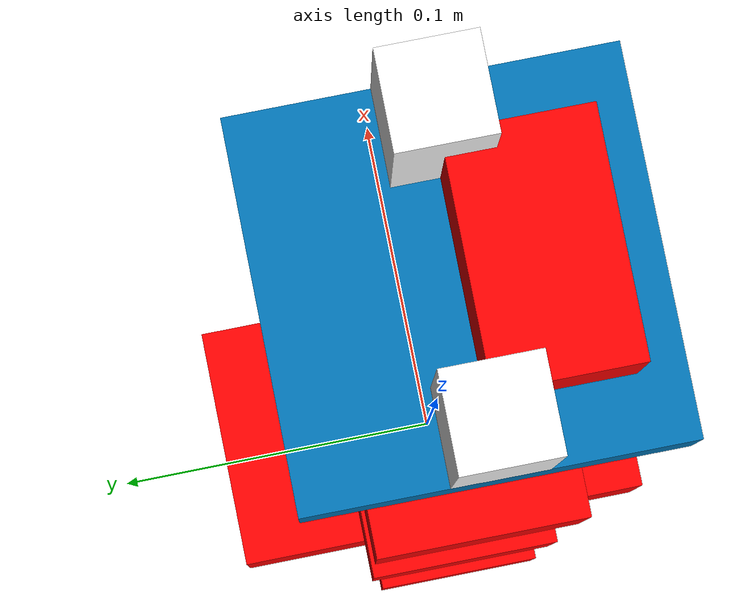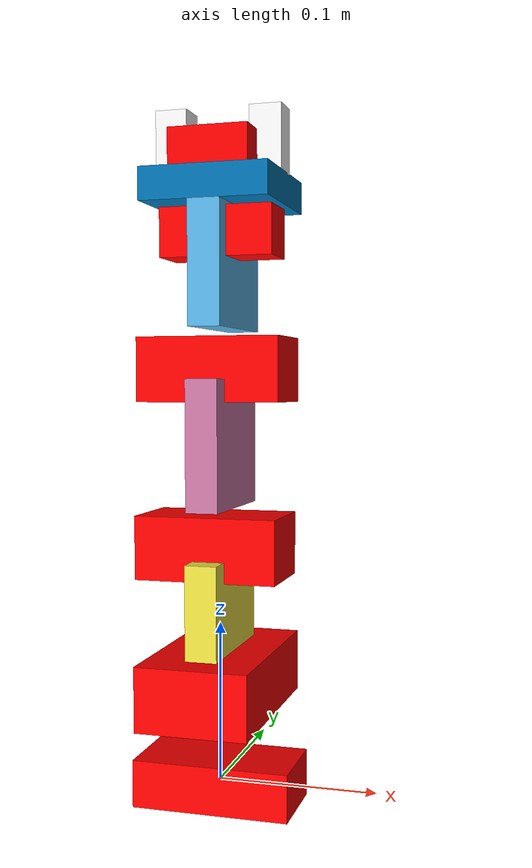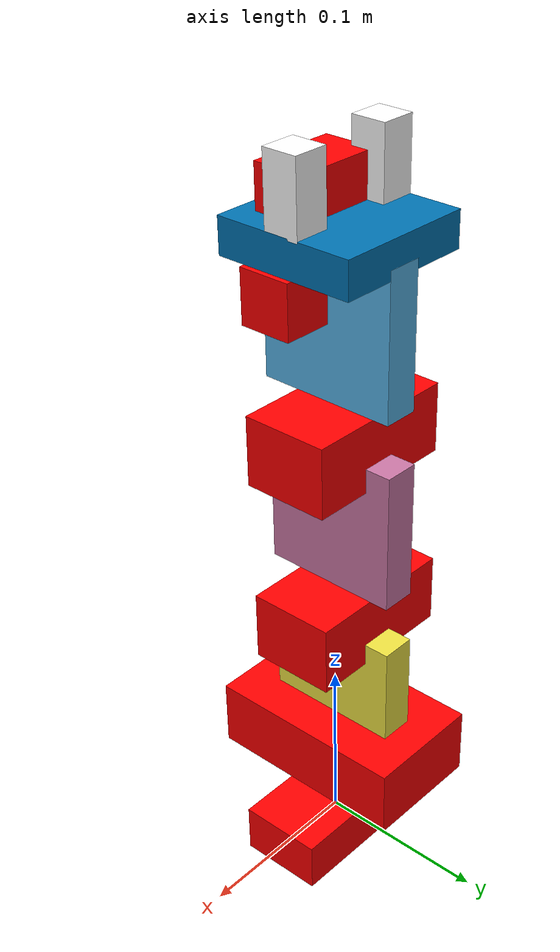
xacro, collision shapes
<?xml version="1.0"?>
<robot xmlns:xacro="http://www.ros.org/wiki/xacro" name="arm">

  <material name="red">
    <color rgba="1 0 0 1"/>
  </material>

  <link name="base_link">
    <visual>
      <geometry>
        <mesh filename="package://arm_description/meshes/base_link.stl" scale="0.001 0.001 0.001"/>
      </geometry>
      <origin rpy="0 0 0" xyz="0 0 0"/>
      <material name="red"/>
    </visual>
    <collision>
      <geometry>
        <box size="0.1 0.05 0.03"/>
      </geometry>
      <origin rpy="0 0 0" xyz="0 0 0"/>
    </collision>
    <inertial>
      <mass value="0.1"/>
      <inertia ixx="1.06682889e+08" ixy="0.0" ixz="0.0" iyy="9.92165844e+07" iyz="0.0" izz="1.26939175e+08"/>
    </inertial>
  </link>

  <joint name="base_1_2" type="fixed">
    <parent link="base_link"/>
    <child link="base_turn"/>
    <origin xyz="-0.0011 -0.011 0.05"/>
  </joint>

  <link name="base_turn">
    <visual>
      <geometry>
        <mesh filename="package://arm_description/meshes/base_turn.stl" scale="0.001 0.001 0.001"/>
      </geometry>
      <origin rpy="0 0 0" xyz="0 0 0"/>
      <material name="red"/>
    </visual>
    <collision>
      <geometry>
          <box size="0.001 0.001 0.001"/>
        </geometry>
      <origin rpy="0 0 0" xyz="0 0 0"/>
    </collision>
    <inertial>
      <mass value="0.1"/>
      <inertia ixx="1.35223008e+07" ixy="0.0" ixz="0.0" iyy="8.13814925e+06" iyz="0.0" izz="2.14903814e+07"/>
    </inertial>
  </link>

  <joint name="j0" type="revolute">
    <parent link="base_turn"/>
    <child link="base_turn_rot"/>
    <origin xyz="-0.0 0.0155 0.013" rpy = "0 0 -1.57"/>
    <axis xyz="0 0 1" />
    <limit effort="300" velocity="0.1" lower="-2.57" upper="2.57"/>
  </joint>

  <link name="base_turn_rot">
    <visual>
      <geometry>
        <mesh filename="package://arm_description/meshes/base_turn_table_rot.stl" scale="0.001 0.001 0.001"/>
      </geometry>
      <material name="red"/>
    </visual>
    <collision>
      <geometry>
          <box size="0.12 0.07 0.04"/>
        </geometry>
      <origin rpy="0 0 0" xyz="0 0 0"/>
    </collision>

    <inertial>
      <mass value="0.1"/>
      <inertia ixx="0.001" ixy="0.0" ixz="0.0" iyy="0.001" iyz="0.0" izz="0.001"/>
    </inertial>
  </link>

  <joint name="base_turn_rot_dyn2" type="fixed">
    <parent link="base_turn_rot"/>
    <child link="dyn2"/>
    <origin xyz="0 0 0.0385" rpy="0 1.57 1.57 "/>
  </joint>

  <link name="dyn2">
    <visual>
      <geometry>
        <mesh filename="package://arm_description/meshes/dyn.stl" scale="0.01 0.01 0.01"/>
      </geometry>

      <origin rpy="0 0 0" xyz="0 0 0"/>
    </visual>
    <collision>
      <geometry>
          <box size= "0.08 0.08 0.02"/>
        </geometry>
      <origin rpy="0 0 0" xyz="0 0 0"/>
    </collision>
     <inertial>
      <mass value="0.1"/>
      <inertia ixx="6.90013881e-05" ixy="0.0" ixz="0.0" iyy="1.24554875e-04" iyz="0.0" izz="1.04295793e-04"/>
    </inertial>
  </link>

  <joint name="j1" type="revolute">
    <parent link="dyn2"/>
    <child link="dyn2_r"/>
    <origin xyz="0 0 0.0" rpy="0 0 0"/>
    <axis xyz="0 0 1" />
    <limit effort="300" velocity="0.1" lower="-3.14" upper="3.14"/>
  </joint>

  <link name="dyn2_r">

  </link>

  <joint name="dyn2_f4" type="fixed">
    <parent link="dyn2_r"/>
    <child link="f4"/>
    <origin xyz="-0.047 0.0 -0.003" rpy="0 1.57 1.57"/>
  </joint>

  <link name="f4">
    <visual>
      <geometry>
        <mesh filename="package://arm_description/meshes/f4_n_f3.stl" scale="0.001 0.001 0.001"/>
      </geometry>
      <origin rpy="0 0 0" xyz="0 0 0"/>
      <material name="red"/>
    </visual>
    <collision>
      <geometry>
          <box size="0.09 0.04 0.05"/>
        </geometry>
      <origin rpy="0 0 0" xyz="0 0 0"/>
    </collision>
     <inertial>
      <mass value="0.1"/>
      <inertia ixx="6.90013881e-05" ixy="0.0" ixz="0.0" iyy="1.24554875e-04" iyz="0.0" izz="1.04295793e-04"/>
    </inertial>
  </link>

  <joint name="d4_dyn3" type="fixed">
    <parent link="f4"/>
    <child link="dyn3"/>
    <origin xyz="-0.004 0.0645 0 " rpy="-1.57 3.14 1.57"/>
  </joint>

  <link name="dyn3">
    <visual>
      <geometry>
        <mesh filename="package://arm_description/meshes/dyn.stl" scale="0.01 0.01 0.01"/>
      </geometry>
      <origin rpy="0 0 0" xyz="0 0 0"/>
    </visual>
    <collision>
      <geometry>
          <box size="0.08 0.08 0.02"/>
        </geometry>
      <origin rpy="0 0 0" xyz="0 0 0"/>
    </collision>
     <inertial>
      <mass value="0.1"/>
      <inertia ixx="6.90013881e-05" ixy="0.0" ixz="0.0" iyy="1.24554875e-04" iyz="0.0" izz="1.04295793e-04"/>
    </inertial>
  </link>

  <joint name="j2" type="revolute">
    <parent link="dyn3"/>
    <child link="dyn3_r"/>
    <origin xyz="0 0 0.0" rpy="0 0 0"/>
    <axis xyz="0 0 1" />
    <limit effort="300" velocity="0.1" lower="-3.14" upper="3.14"/>
  </joint>

 <link name="dyn3_r">

  </link>

  <joint name="dyn3_f5" type="fixed">
    <parent link="dyn3_r"/>
    <child link="f5"/>
    <origin xyz="-0.046 -0.0 -0.002" rpy="1.57 1.57 3.1415 "/>
  </joint>

  <link name="f5">
    <visual>
      <geometry>
        <mesh filename="package://arm_description/meshes/f4_n_f3.stl" scale="0.001 0.001 0.001"/>
      </geometry>
      <origin rpy="0 0 0" xyz="0 0 0"/>
      <material name="red"/>
    </visual>
    <collision>
      <geometry>
          <box size="0.09 0.04 0.05"/>
        </geometry>
      <origin rpy="0 0 0" xyz="0 0 0"/>
    </collision>

    <inertial>
      <mass value="0.1"/>
  <inertia ixx="0.001" ixy="0.0" ixz="0.0" iyy="0.001" iyz="0.0" izz="0.001"/>    </inertial>
  </link>

  <joint name="f5_dyn4" type="fixed">
    <parent link="f5"/>
    <child link="dyn4"/>
    <origin xyz="-0.004 0.065 -0.0" rpy="-1.57 3.1415 1.57 "/>
  </joint>

  <link name="dyn4">
    <visual>
      <geometry>
        <mesh filename="package://arm_description/meshes/dyn.stl" scale="0.01 0.01 0.01"/>
      </geometry>

      <origin rpy="0 0 0" xyz="0 0 0"/>
    </visual>
    <collision>
      <geometry>
          <box size="0.08 0.08 0.02"/>
        </geometry>
      <origin rpy="0 0 0" xyz="0 0 0"/>
    </collision>

    <inertial>
      <mass value="0.1"/>
      <inertia ixx="6.90013881e-05" ixy="0.0" ixz="0.0" iyy="1.24554875e-04" iyz="0.0" izz="1.04295793e-04"/>
    </inertial>
  </link>

  <joint name="j3" type="revolute">
    <parent link="dyn4"/>
    <child link="dyn4_r"/>
    <origin xyz="0 0 0.0" rpy="0 0 0"/>
    <axis xyz="0 0 1" />
    <limit effort="300" velocity="0.1" lower="-3.14" upper="3.14"/>
  </joint>

  <link name="dyn4_r">

  </link>

  <joint name="f5_wrist" type="fixed">
    <parent link="dyn4_r"/>
    <child link="wrist"/>
    <origin xyz="-0.017 -0.013 0.003" rpy="1.57 1.57 -1.57"/>
  </joint>

  <link name="wrist">
    <visual>
      <geometry>
        <mesh filename="package://arm_description/meshes/wrist.stl" scale="0.001 0.001 0.001"/>
      </geometry>
      <origin rpy="0 0 0" xyz="0 0 0"/>
      <material name="red"/>
    </visual>
    <collision>
      <geometry>
        <box size="0.07 0.03 0.03"/>
      </geometry>
      <origin rpy="0 0 0" xyz="0 0 0"/>
    </collision>

     <inertial>
      <mass value="0.1"/>
      <inertia ixx="6.90013881e-05" ixy="0.0" ixz="0.0" iyy="1.24554875e-04" iyz="0.0" izz="1.04295793e-04"/>
    </inertial>
  </link>

  <joint name="wrist_dyn5" type="fixed">
    <parent link="wrist"/>
    <child link="dyn5"/>
    <origin xyz="0.0038 -0.013 0.0275" rpy="0 0 1.57"/>
  </joint>

    <link name="dyn5">
    <visual>
      <geometry>
        <mesh filename="package://arm_description/meshes/dyn.stl" scale="0.01 0.01 0.01"/>
      </geometry>
      <origin rpy="0 0 0" xyz="0 0 0"/>
    </visual>
    <collision>
      <geometry>
          <box size="0.08 0.08 0.02"/>
        </geometry>
      <origin rpy="0 0 0" xyz="0 0 0"/>
    </collision>

    <inertial>
      <mass value="0.1"/>
      <inertia ixx="6.90013881e-05" ixy="0.0" ixz="0.0" iyy="1.24554875e-04" iyz="0.0" izz="1.04295793e-04"/>
    </inertial>
  </link>

  <joint name="dyn5_dyn5_r" type="fixed">
    <parent link="dyn5"/>
    <child link="dyn5_r"/>
    <origin xyz="0 0 0.0" rpy="0 0 0"/>
    <axis xyz="0 0 1" />
    <limit effort="300" velocity="0.1" lower="-3.14" upper="3.14"/>
  </joint>

  <link name="dyn5_r">

  </link>

  <joint name="wrist_rotate_dyn5" type="fixed">
    <parent link="dyn5_r"/>
    <child link="crawer_base"/>
    <origin xyz="0.015 0 0.019" rpy="0 0 1.57"/>
  </joint>

  <link name="crawer_base">
    <visual>
      <geometry>
        <mesh filename="package://arm_description/meshes/the_crawer_base.stl" scale="0.001 0.001 0.001"/>
      </geometry>
      <origin rpy="0 0 0" xyz="0 0 0"/>
      <material name="red"/>
    </visual>
    <collision>
      <geometry>
          <box size="0.05 0.03 0.03"/>
        </geometry>
      <origin rpy="0 0 0" xyz="0 0 0"/>
    </collision>

    <inertial>
      <mass value="0.1"/>
      <inertia ixx="6.90013881e-05" ixy="0.0" ixz="0.0" iyy="1.24554875e-04" iyz="0.0" izz="1.04295793e-04"/>
    </inertial>
  </link>

  <joint name="crawer_base_crawer_left" type="fixed">
    <parent link="crawer_base"/>
    <child link="crawer_left"/>
    <origin xyz="-0.03 0.015 0.01" rpy="0 -1.57 0"/>
  </joint>

  <link name="crawer_left">
    <visual>
      <geometry>
        <mesh filename="package://arm_description/meshes/the_crawer.stl" scale="0.001 0.001 0.001"/>
      </geometry>
      <origin rpy="0 0 0" xyz="0 0 0"/>
      <material name="white">
        <color rgba="1 1 1 1"/>
      </material>
    </visual>
    <collision>
      <geometry>
          <box size="0.04 0.02 0.02"/>
        </geometry>
      <origin rpy="0 0 0" xyz="0 0 0"/>
    </collision>

    <inertial>
      <mass value="0.1"/>
      <inertia ixx="6.90013881e-05" ixy="0.0" ixz="0.0" iyy="1.24554875e-04" iyz="0.0" izz="1.04295793e-04"/>
    </inertial>
  </link>

  <joint name="crawer_base_crawer_right" type="fixed">
    <parent link="crawer_base"/>
    <child link="crawer_right"/>
    <origin xyz="0.03 0.015 0.01" rpy="3.1415 -1.57 0"/>
  </joint>

  <link name="crawer_right">
    <visual>
      <geometry>
        <mesh filename="package://arm_description/meshes/the_crawer.stl" scale="0.001 0.001 0.001"/>
      </geometry>
      <origin rpy="0 0 0" xyz="0 0 0"/>
      <material name="white">
        <color rgba="1 1 1 1"/>
      </material>
    </visual>
    <collision>
      <geometry>
          <box size="0.04 0.02 0.02"/>
        </geometry>
      <origin rpy="0 0 0" xyz="0 0 0"/>
    </collision>

    <inertial>
      <mass value="0.1"/>
      <inertia ixx="6.90013881e-05" ixy="0.0" ixz="0.0" iyy="1.24554875e-04" iyz="0.0" izz="1.04295793e-04"/>
    </inertial>
  </link>

  <gazebo>
	  <plugin filename="ign_ros2_control-system" name="ign_ros2_control::IgnitionROS2ControlPlugin">
    <parameters>$(find arm_control)/config/arm_control.yaml</parameters>
    <controller_manager_prefix_node_name>controller_manager</controller_manager_prefix_node_name>
    </plugin>
  </gazebo>

<!-- Include hardware interface -->
  <xacro:include filename="$(find arm_description)/urdf/arm_hardware_interface.xacro"/>
  <xacro:include filename="$(find arm_gazebo)/urdf/camera.xacro"/>

  <ros2_control name="HardwareInterface_Ignition" type="system">

    <hardware>
      <plugin>ign_ros2_control/IgnitionSystem</plugin>
    </hardware>

    <xacro:PositionJointInterface name="j0" initial_pos="0.0"/>
    <xacro:PositionJointInterface name="j1" initial_pos="0.0"/>
    <xacro:PositionJointInterface name="j2" initial_pos="0.0"/>
    <xacro:PositionJointInterface name="j3" initial_pos="0.0"/>

  </ros2_control>

  <gazebo>
    <plugin filename="gz-sim-sensors-system"
          name="gz::sim::systems::Sensors">
    <render_engine>ogre2</render_engine>
    </plugin>
  </gazebo>
<!-- Add the camera sensor -->
  <xacro:camera_sensor parent="base_link">
    <origin xyz="0 0 0" rpy="0 0 0"/>
  </xacro:camera_sensor>

</robot>

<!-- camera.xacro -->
<robot xmlns:xacro="http://www.ros.org/wiki/xacro">

  <xacro:macro name="camera_sensor" params="parent *origin">
    <!-- Camera link -->
    <link name="camera_link">
      <visual>
        <geometry>
          <box size="0.02 0.02 0.02"/>
        </geometry>
        <material name="red"/>
      </visual>
      <collision>
        <geometry>
          <box size="0.02 0.02 0.02"/>
        </geometry>
      </collision>
      <inertial>
        <mass value="0.1"/>
        <inertia ixx="0.000016667" ixy="0.0" ixz="0.0"
                 iyy="0.000016667" iyz="0.0"
                 izz="0.000016667"/>
      </inertial>
    </link>

    <!-- Camera joint -->
    <joint name="camera_joint" type="fixed">
      <parent link="${parent}"/>
      <child link="camera_link"/>
      <xacro:insert_block name="origin"/>
    </joint>

    <!-- Gazebo reference for the camera -->
    <gazebo reference="camera_link">
      <sensor name="camera" type="camera">
        <camera>
          <horizontal_fov>1.047</horizontal_fov>
          <image>
            <width>640</width>
            <height>480</height>
          </image>
          <clip>
            <near>0.1</near>
            <far>100</far>
          </clip>
        </camera>
        <always_on>1</always_on>
        <update_rate>30</update_rate>
        <visualize>true</visualize>
        <topic>camera</topic>
      </sensor>
    </gazebo>
  </xacro:macro>

</robot>
